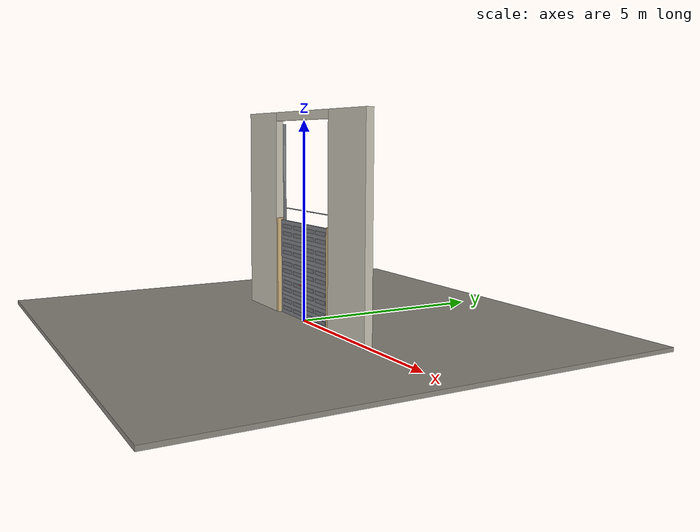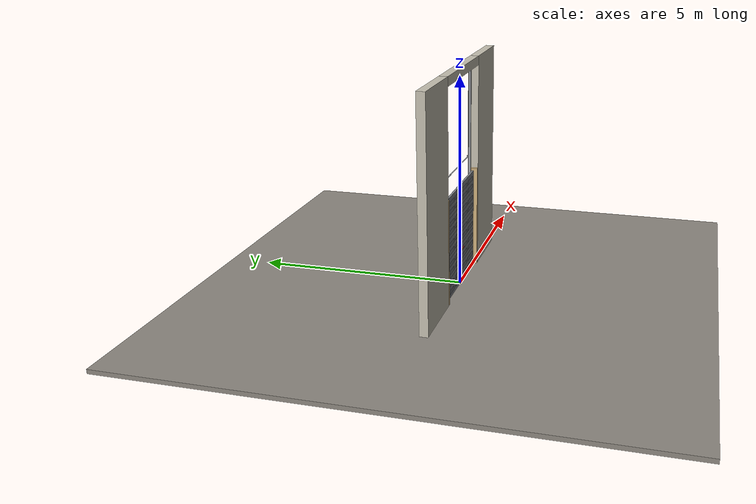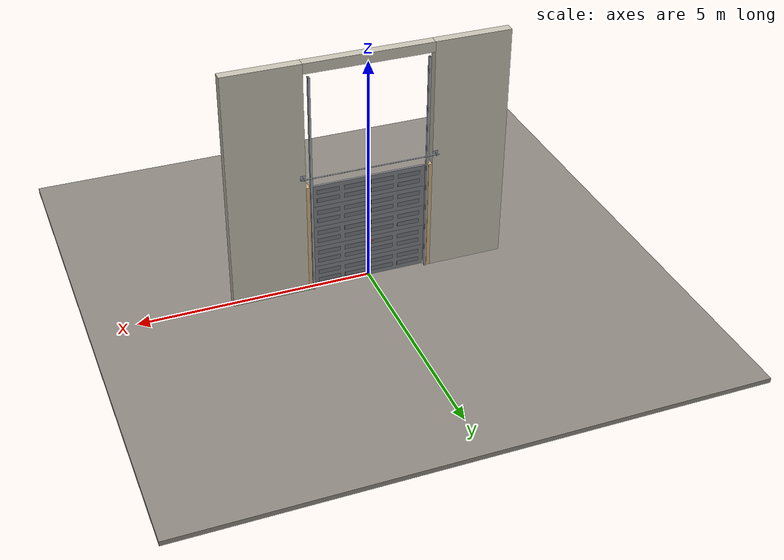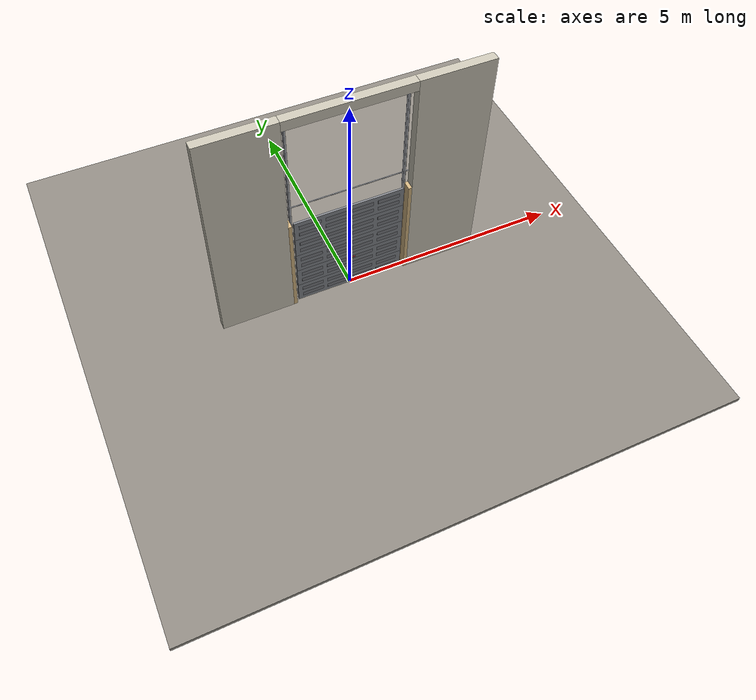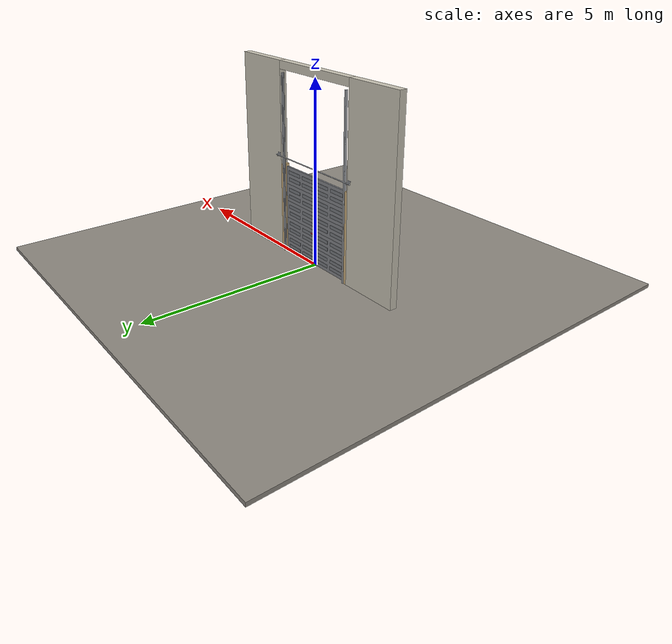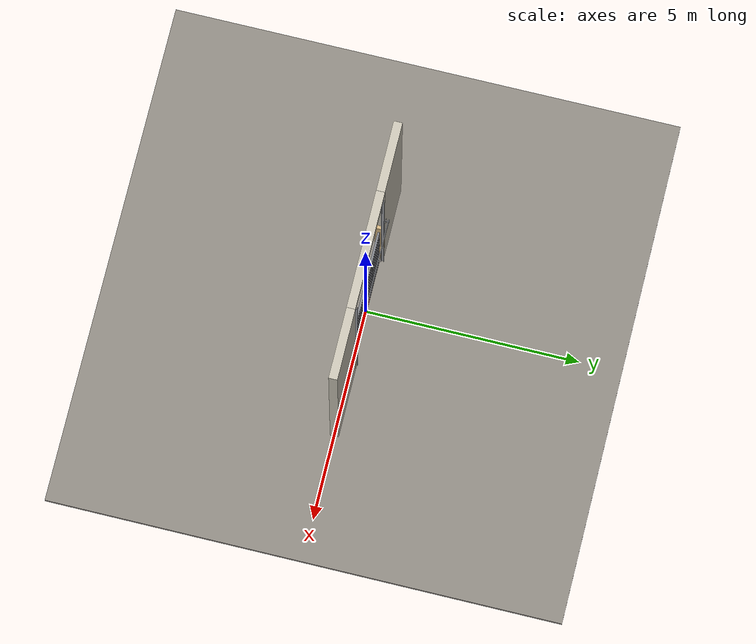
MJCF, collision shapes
<?xml version="1.0" ?>
<mujoco model="db0437_garage_sectional_simple">
  <compiler angle="radian" meshdir="../../hardware" texturedir="../../textures" autolimits="true" inertiafromgeom="false"/>
  <option timestep="0.002" integrator="implicitfast" cone="elliptic" impratio="10" noslip_iterations="3">
    <flag multiccd="enable"/>
  </option>
  <size memory="16M"/>
  <default>
    <geom condim="4" solref="0.005 1" solimp="0.95 0.99 0.001"/>
    <joint solreflimit="0.005 1" solimplimit="0.95 0.99 0.001"/>
    <tendon solreflimit="0.005 1"/>
    <equality solref="0.002 1"/>
  </default>
  <visual>
    <headlight ambient="0.4 0.4 0.4" diffuse="0.7 0.7 0.7" specular="0.2 0.2 0.2"/>
    <quality shadowsize="4096"/>
    <map znear="0.01" zfar="60"/>
  </visual>
  <asset>
    <mesh name="pull_bdc5e965ab" file="pull_bdc5e965ab.obj"/>
    <material name="mat_floor" rgba="0.55 0.53 0.5 1" specular="0.2" shininess="0.15" reflectance="0"/>
    <material name="mat_wall" rgba="0.78 0.76 0.7 1" specular="0.2" shininess="0.1" reflectance="0"/>
    <material name="mat_frame" rgba="0.82 0.7 0.5 1" specular="0.2" shininess="0.45" reflectance="0"/>
    <material name="mat_track" rgba="0.65 0.66 0.68 1" specular="0.74" shininess="0.5" reflectance="0.36"/>
    <material name="mat_section_0" rgba="0.5 0.51 0.53 1" specular="0.23" shininess="0.36" reflectance="0.02"/>
    <material name="mat_section_0_panel" rgba="0.46 0.469 0.488 1" specular="0.23" shininess="0.36" reflectance="0.02"/>
    <material name="mat_section_1" rgba="0.5 0.51 0.53 1" specular="0.23" shininess="0.36" reflectance="0.02"/>
    <material name="mat_section_1_panel" rgba="0.46 0.469 0.488 1" specular="0.23" shininess="0.36" reflectance="0.02"/>
    <material name="mat_hinge_line" rgba="0.2 0.2 0.2 1" specular="0.2" shininess="0.3" reflectance="0"/>
    <material name="mat_section_2" rgba="0.5 0.51 0.53 1" specular="0.23" shininess="0.36" reflectance="0.02"/>
    <material name="mat_section_2_panel" rgba="0.46 0.469 0.488 1" specular="0.23" shininess="0.36" reflectance="0.02"/>
    <material name="mat_section_3" rgba="0.5 0.51 0.53 1" specular="0.23" shininess="0.36" reflectance="0.02"/>
    <material name="mat_section_3_panel" rgba="0.46 0.469 0.488 1" specular="0.23" shininess="0.36" reflectance="0.02"/>
    <material name="mat_section_4" rgba="0.5 0.51 0.53 1" specular="0.23" shininess="0.36" reflectance="0.02"/>
    <material name="mat_section_4_panel" rgba="0.46 0.469 0.488 1" specular="0.23" shininess="0.36" reflectance="0.02"/>
    <material name="mat_spring" rgba="0.55 0.56 0.58 1" specular="0.8" shininess="0.55" reflectance="0.4"/>
    <material name="mat_op_black_matte_metal" rgba="0.05 0.05 0.05 1" specular="0.38" shininess="0.3" reflectance="0.12"/>
    <texture name="skybox" type="skybox" builtin="gradient" rgb1="0.6 0.7 0.85" rgb2="0.9 0.92 0.95" width="256" height="256"/>
  </asset>
  <worldbody>
    <light name="sun" pos="1.5 -2.5 4" dir="-0.3 0.5 -0.8" directional="true" diffuse="0.8 0.8 0.8" specular="0.3 0.3 0.3" castshadow="true"/>
    <light name="fill" pos="-1.5 2.5 3" dir="0.3 -0.5 -0.7" directional="true" diffuse="0.35 0.35 0.4" castshadow="false"/>
    <camera name="robot_view" pos="0 -2.959375 2.073625" xyaxes="1 0 0 0 0.26963 0.962964" fovy="52"/>
    <camera name="far_view" pos="0 2.959375 2.073625" xyaxes="-1 0 0 0 -0.26963 0.962964" fovy="52"/>
    <camera name="iso" pos="2.249125 -2.485875 2.547125" xyaxes="0.741536 0.670913 0 -0.242917 0.268487 0.932151" fovy="46"/>
    <camera name="detail_handle" pos="0.25 -1.175 1.25" xyaxes="0.975133 0.221621 0 -0.065674 0.288965 0.955084" fovy="38"/>
    <geom name="floor" type="box" size="6 6 0.05" pos="0 0 -0.05" material="mat_floor" group="0" contype="1" conaffinity="1" friction="0.8 0.005 0.0001" density="2400"/>
    <geom name="wall_left" type="box" size="0.8175 0.1 2.615" pos="-2.1825 0 2.615" material="mat_wall" group="0" contype="1" conaffinity="1" friction="0.6 0.005 0.0001" density="800"/>
    <geom name="wall_right" type="box" size="0.8175 0.1 2.615" pos="2.1825 0 2.615" material="mat_wall" group="0" contype="1" conaffinity="1" friction="0.6 0.005 0.0001" density="800"/>
    <geom name="wall_header" type="box" size="1.365 0.1 0.11" pos="0 0 5.12" material="mat_wall" group="0" contype="1" conaffinity="1" friction="0.6 0.005 0.0001" density="800"/>
    <geom name="garage_jamb_l" type="box" size="0.04 0.1 1.245" pos="-1.325 0 1.245" material="mat_frame" group="0" contype="1" conaffinity="1" friction="0.6 0.005 0.0001" density="400"/>
    <geom name="garage_jamb_r" type="box" size="0.04 0.1 1.245" pos="1.325 0 1.245" material="mat_frame" group="0" contype="1" conaffinity="1" friction="0.6 0.005 0.0001" density="400"/>
    <geom name="track_l" type="box" size="0.004 0.033 2.465" pos="-1.27 0.085 2.465" material="mat_track" group="0" contype="1" conaffinity="1" friction="0.6 0.005 0.0001" density="7850"/>
    <geom name="track_l_flange_n" type="box" size="0.022 0.004 2.465" pos="-1.252 0.056 2.465" material="mat_track" group="0" contype="1" conaffinity="1" friction="0.6 0.005 0.0001" density="7850"/>
    <geom name="track_l_flange_p" type="box" size="0.022 0.004 2.465" pos="-1.252 0.114 2.465" material="mat_track" group="0" contype="1" conaffinity="1" friction="0.6 0.005 0.0001" density="7850"/>
    <geom name="track_r" type="box" size="0.004 0.033 2.465" pos="1.27 0.085 2.465" material="mat_track" group="0" contype="1" conaffinity="1" friction="0.6 0.005 0.0001" density="7850"/>
    <geom name="track_r_flange_n" type="box" size="0.022 0.004 2.465" pos="1.252 0.056 2.465" material="mat_track" group="0" contype="1" conaffinity="1" friction="0.6 0.005 0.0001" density="7850"/>
    <geom name="track_r_flange_p" type="box" size="0.022 0.004 2.465" pos="1.252 0.114 2.465" material="mat_track" group="0" contype="1" conaffinity="1" friction="0.6 0.005 0.0001" density="7850"/>
    <geom name="torsion_shaft" type="cylinder" size="0.013 1.475" pos="0 0.17 2.74" quat="0.707107 0 0.707107 0" material="mat_track" group="0" contype="1" conaffinity="1" friction="0.6 0.005 0.0001" density="7850"/>
    <geom name="torsion_bearing_plate_l" type="box" size="0.055 0.004 0.055" pos="-1.425 0.104 2.74" material="mat_track" group="1" contype="0" conaffinity="0" density="7850"/>
    <geom name="torsion_bearing_arm_l" type="box" size="0.008 0.049 0.03" pos="-1.425 0.139 2.74" material="mat_track" group="1" contype="0" conaffinity="0" density="7850"/>
    <geom name="torsion_bearing_plate_r" type="box" size="0.055 0.004 0.055" pos="1.425 0.104 2.74" material="mat_track" group="1" contype="0" conaffinity="0" density="7850"/>
    <geom name="torsion_bearing_arm_r" type="box" size="0.008 0.049 0.03" pos="1.425 0.139 2.74" material="mat_track" group="1" contype="0" conaffinity="0" density="7850"/>
    <site name="approach_point" pos="0 -2 0" quat="1 0 0 0" size="0.05" rgba="0.2 0.9 0.2 0.5" group="4"/>
    <site name="goal_point" pos="0 2 0" quat="1 0 0 0" size="0.05" rgba="0.2 0.9 0.2 0.5" group="4"/>
    <site name="door_plane_center" pos="0 0 1.245" quat="1 0 0 0" size="0.02" rgba="0.2 0.9 0.2 0.5" group="4"/>
    <body name="door" pos="0 0 0">
      <inertial pos="0 0 1.225856" mass="79.742416" quat="-0.5 0.5 0.5 0.5" diaginertia="39.090763465 39.194623237 78.24336217"/>
      <joint name="door_slide" type="slide" axis="0 0 1" limited="true" range="0 2.39" damping="5.987121" frictionloss="234.601789" stiffness="93.283612" springref="7.966667" armature="0.5"/>
      <geom name="section_0_slab" type="box" size="1.22 0.025 0.244" pos="0 0 0.254" material="mat_section_0" group="0" contype="1" conaffinity="1" friction="0.4 0.005 0.0001" density="1"/>
      <geom name="section_0_panel_0_n" type="box" size="0.2425 0.003 0.047" pos="-0.8775 -0.028 0.157" material="mat_section_0_panel" group="1" contype="0" conaffinity="0" density="1"/>
      <geom name="section_0_panel_0_p" type="box" size="0.2425 0.003 0.047" pos="-0.8775 0.028 0.157" material="mat_section_0_panel" group="1" contype="0" conaffinity="0" density="1"/>
      <geom name="section_0_panel_1_n" type="box" size="0.2425 0.003 0.047" pos="-0.2925 -0.028 0.157" material="mat_section_0_panel" group="1" contype="0" conaffinity="0" density="1"/>
      <geom name="section_0_panel_1_p" type="box" size="0.2425 0.003 0.047" pos="-0.2925 0.028 0.157" material="mat_section_0_panel" group="1" contype="0" conaffinity="0" density="1"/>
      <geom name="section_0_panel_2_n" type="box" size="0.2425 0.003 0.047" pos="0.2925 -0.028 0.157" material="mat_section_0_panel" group="1" contype="0" conaffinity="0" density="1"/>
      <geom name="section_0_panel_2_p" type="box" size="0.2425 0.003 0.047" pos="0.2925 0.028 0.157" material="mat_section_0_panel" group="1" contype="0" conaffinity="0" density="1"/>
      <geom name="section_0_panel_3_n" type="box" size="0.2425 0.003 0.047" pos="0.8775 -0.028 0.157" material="mat_section_0_panel" group="1" contype="0" conaffinity="0" density="1"/>
      <geom name="section_0_panel_3_p" type="box" size="0.2425 0.003 0.047" pos="0.8775 0.028 0.157" material="mat_section_0_panel" group="1" contype="0" conaffinity="0" density="1"/>
      <geom name="section_0_panel_4_n" type="box" size="0.2425 0.003 0.047" pos="-0.8775 -0.028 0.351" material="mat_section_0_panel" group="1" contype="0" conaffinity="0" density="1"/>
      <geom name="section_0_panel_4_p" type="box" size="0.2425 0.003 0.047" pos="-0.8775 0.028 0.351" material="mat_section_0_panel" group="1" contype="0" conaffinity="0" density="1"/>
      <geom name="section_0_panel_5_n" type="box" size="0.2425 0.003 0.047" pos="-0.2925 -0.028 0.351" material="mat_section_0_panel" group="1" contype="0" conaffinity="0" density="1"/>
      <geom name="section_0_panel_5_p" type="box" size="0.2425 0.003 0.047" pos="-0.2925 0.028 0.351" material="mat_section_0_panel" group="1" contype="0" conaffinity="0" density="1"/>
      <geom name="section_0_panel_6_n" type="box" size="0.2425 0.003 0.047" pos="0.2925 -0.028 0.351" material="mat_section_0_panel" group="1" contype="0" conaffinity="0" density="1"/>
      <geom name="section_0_panel_6_p" type="box" size="0.2425 0.003 0.047" pos="0.2925 0.028 0.351" material="mat_section_0_panel" group="1" contype="0" conaffinity="0" density="1"/>
      <geom name="section_0_panel_7_n" type="box" size="0.2425 0.003 0.047" pos="0.8775 -0.028 0.351" material="mat_section_0_panel" group="1" contype="0" conaffinity="0" density="1"/>
      <geom name="section_0_panel_7_p" type="box" size="0.2425 0.003 0.047" pos="0.8775 0.028 0.351" material="mat_section_0_panel" group="1" contype="0" conaffinity="0" density="1"/>
      <geom name="section_1_slab" type="box" size="1.22 0.025 0.244" pos="0 0 0.742" material="mat_section_1" group="0" contype="1" conaffinity="1" friction="0.4 0.005 0.0001" density="1"/>
      <geom name="section_1_panel_0_n" type="box" size="0.2425 0.003 0.047" pos="-0.8775 -0.028 0.645" material="mat_section_1_panel" group="1" contype="0" conaffinity="0" density="1"/>
      <geom name="section_1_panel_0_p" type="box" size="0.2425 0.003 0.047" pos="-0.8775 0.028 0.645" material="mat_section_1_panel" group="1" contype="0" conaffinity="0" density="1"/>
      <geom name="section_1_panel_1_n" type="box" size="0.2425 0.003 0.047" pos="-0.2925 -0.028 0.645" material="mat_section_1_panel" group="1" contype="0" conaffinity="0" density="1"/>
      <geom name="section_1_panel_1_p" type="box" size="0.2425 0.003 0.047" pos="-0.2925 0.028 0.645" material="mat_section_1_panel" group="1" contype="0" conaffinity="0" density="1"/>
      <geom name="section_1_panel_2_n" type="box" size="0.2425 0.003 0.047" pos="0.2925 -0.028 0.645" material="mat_section_1_panel" group="1" contype="0" conaffinity="0" density="1"/>
      <geom name="section_1_panel_2_p" type="box" size="0.2425 0.003 0.047" pos="0.2925 0.028 0.645" material="mat_section_1_panel" group="1" contype="0" conaffinity="0" density="1"/>
      <geom name="section_1_panel_3_n" type="box" size="0.2425 0.003 0.047" pos="0.8775 -0.028 0.645" material="mat_section_1_panel" group="1" contype="0" conaffinity="0" density="1"/>
      <geom name="section_1_panel_3_p" type="box" size="0.2425 0.003 0.047" pos="0.8775 0.028 0.645" material="mat_section_1_panel" group="1" contype="0" conaffinity="0" density="1"/>
      <geom name="section_1_panel_4_n" type="box" size="0.2425 0.003 0.047" pos="-0.8775 -0.028 0.839" material="mat_section_1_panel" group="1" contype="0" conaffinity="0" density="1"/>
      <geom name="section_1_panel_4_p" type="box" size="0.2425 0.003 0.047" pos="-0.8775 0.028 0.839" material="mat_section_1_panel" group="1" contype="0" conaffinity="0" density="1"/>
      <geom name="section_1_panel_5_n" type="box" size="0.2425 0.003 0.047" pos="-0.2925 -0.028 0.839" material="mat_section_1_panel" group="1" contype="0" conaffinity="0" density="1"/>
      <geom name="section_1_panel_5_p" type="box" size="0.2425 0.003 0.047" pos="-0.2925 0.028 0.839" material="mat_section_1_panel" group="1" contype="0" conaffinity="0" density="1"/>
      <geom name="section_1_panel_6_n" type="box" size="0.2425 0.003 0.047" pos="0.2925 -0.028 0.839" material="mat_section_1_panel" group="1" contype="0" conaffinity="0" density="1"/>
      <geom name="section_1_panel_6_p" type="box" size="0.2425 0.003 0.047" pos="0.2925 0.028 0.839" material="mat_section_1_panel" group="1" contype="0" conaffinity="0" density="1"/>
      <geom name="section_1_panel_7_n" type="box" size="0.2425 0.003 0.047" pos="0.8775 -0.028 0.839" material="mat_section_1_panel" group="1" contype="0" conaffinity="0" density="1"/>
      <geom name="section_1_panel_7_p" type="box" size="0.2425 0.003 0.047" pos="0.8775 0.028 0.839" material="mat_section_1_panel" group="1" contype="0" conaffinity="0" density="1"/>
      <geom name="section_2_slab" type="box" size="1.22 0.025 0.244" pos="0 0 1.23" material="mat_section_2" group="0" contype="1" conaffinity="1" friction="0.4 0.005 0.0001" density="1"/>
      <geom name="section_2_panel_0_n" type="box" size="0.2425 0.003 0.047" pos="-0.8775 -0.028 1.133" material="mat_section_2_panel" group="1" contype="0" conaffinity="0" density="1"/>
      <geom name="section_2_panel_0_p" type="box" size="0.2425 0.003 0.047" pos="-0.8775 0.028 1.133" material="mat_section_2_panel" group="1" contype="0" conaffinity="0" density="1"/>
      <geom name="section_2_panel_1_n" type="box" size="0.2425 0.003 0.047" pos="-0.2925 -0.028 1.133" material="mat_section_2_panel" group="1" contype="0" conaffinity="0" density="1"/>
      <geom name="section_2_panel_1_p" type="box" size="0.2425 0.003 0.047" pos="-0.2925 0.028 1.133" material="mat_section_2_panel" group="1" contype="0" conaffinity="0" density="1"/>
      <geom name="section_2_panel_2_n" type="box" size="0.2425 0.003 0.047" pos="0.2925 -0.028 1.133" material="mat_section_2_panel" group="1" contype="0" conaffinity="0" density="1"/>
      <geom name="section_2_panel_2_p" type="box" size="0.2425 0.003 0.047" pos="0.2925 0.028 1.133" material="mat_section_2_panel" group="1" contype="0" conaffinity="0" density="1"/>
      <geom name="section_2_panel_3_n" type="box" size="0.2425 0.003 0.047" pos="0.8775 -0.028 1.133" material="mat_section_2_panel" group="1" contype="0" conaffinity="0" density="1"/>
      <geom name="section_2_panel_3_p" type="box" size="0.2425 0.003 0.047" pos="0.8775 0.028 1.133" material="mat_section_2_panel" group="1" contype="0" conaffinity="0" density="1"/>
      <geom name="section_2_panel_4_n" type="box" size="0.2425 0.003 0.047" pos="-0.8775 -0.028 1.327" material="mat_section_2_panel" group="1" contype="0" conaffinity="0" density="1"/>
      <geom name="section_2_panel_4_p" type="box" size="0.2425 0.003 0.047" pos="-0.8775 0.028 1.327" material="mat_section_2_panel" group="1" contype="0" conaffinity="0" density="1"/>
      <geom name="section_2_panel_5_n" type="box" size="0.2425 0.003 0.047" pos="-0.2925 -0.028 1.327" material="mat_section_2_panel" group="1" contype="0" conaffinity="0" density="1"/>
      <geom name="section_2_panel_5_p" type="box" size="0.2425 0.003 0.047" pos="-0.2925 0.028 1.327" material="mat_section_2_panel" group="1" contype="0" conaffinity="0" density="1"/>
      <geom name="section_2_panel_6_n" type="box" size="0.2425 0.003 0.047" pos="0.2925 -0.028 1.327" material="mat_section_2_panel" group="1" contype="0" conaffinity="0" density="1"/>
      <geom name="section_2_panel_6_p" type="box" size="0.2425 0.003 0.047" pos="0.2925 0.028 1.327" material="mat_section_2_panel" group="1" contype="0" conaffinity="0" density="1"/>
      <geom name="section_2_panel_7_n" type="box" size="0.2425 0.003 0.047" pos="0.8775 -0.028 1.327" material="mat_section_2_panel" group="1" contype="0" conaffinity="0" density="1"/>
      <geom name="section_2_panel_7_p" type="box" size="0.2425 0.003 0.047" pos="0.8775 0.028 1.327" material="mat_section_2_panel" group="1" contype="0" conaffinity="0" density="1"/>
      <geom name="section_3_slab" type="box" size="1.22 0.025 0.244" pos="0 0 1.718" material="mat_section_3" group="0" contype="1" conaffinity="1" friction="0.4 0.005 0.0001" density="1"/>
      <geom name="section_3_panel_0_n" type="box" size="0.2425 0.003 0.047" pos="-0.8775 -0.028 1.621" material="mat_section_3_panel" group="1" contype="0" conaffinity="0" density="1"/>
      <geom name="section_3_panel_0_p" type="box" size="0.2425 0.003 0.047" pos="-0.8775 0.028 1.621" material="mat_section_3_panel" group="1" contype="0" conaffinity="0" density="1"/>
      <geom name="section_3_panel_1_n" type="box" size="0.2425 0.003 0.047" pos="-0.2925 -0.028 1.621" material="mat_section_3_panel" group="1" contype="0" conaffinity="0" density="1"/>
      <geom name="section_3_panel_1_p" type="box" size="0.2425 0.003 0.047" pos="-0.2925 0.028 1.621" material="mat_section_3_panel" group="1" contype="0" conaffinity="0" density="1"/>
      <geom name="section_3_panel_2_n" type="box" size="0.2425 0.003 0.047" pos="0.2925 -0.028 1.621" material="mat_section_3_panel" group="1" contype="0" conaffinity="0" density="1"/>
      <geom name="section_3_panel_2_p" type="box" size="0.2425 0.003 0.047" pos="0.2925 0.028 1.621" material="mat_section_3_panel" group="1" contype="0" conaffinity="0" density="1"/>
      <geom name="section_3_panel_3_n" type="box" size="0.2425 0.003 0.047" pos="0.8775 -0.028 1.621" material="mat_section_3_panel" group="1" contype="0" conaffinity="0" density="1"/>
      <geom name="section_3_panel_3_p" type="box" size="0.2425 0.003 0.047" pos="0.8775 0.028 1.621" material="mat_section_3_panel" group="1" contype="0" conaffinity="0" density="1"/>
      <geom name="section_3_panel_4_n" type="box" size="0.2425 0.003 0.047" pos="-0.8775 -0.028 1.815" material="mat_section_3_panel" group="1" contype="0" conaffinity="0" density="1"/>
      <geom name="section_3_panel_4_p" type="box" size="0.2425 0.003 0.047" pos="-0.8775 0.028 1.815" material="mat_section_3_panel" group="1" contype="0" conaffinity="0" density="1"/>
      <geom name="section_3_panel_5_n" type="box" size="0.2425 0.003 0.047" pos="-0.2925 -0.028 1.815" material="mat_section_3_panel" group="1" contype="0" conaffinity="0" density="1"/>
      <geom name="section_3_panel_5_p" type="box" size="0.2425 0.003 0.047" pos="-0.2925 0.028 1.815" material="mat_section_3_panel" group="1" contype="0" conaffinity="0" density="1"/>
      <geom name="section_3_panel_6_n" type="box" size="0.2425 0.003 0.047" pos="0.2925 -0.028 1.815" material="mat_section_3_panel" group="1" contype="0" conaffinity="0" density="1"/>
      <geom name="section_3_panel_6_p" type="box" size="0.2425 0.003 0.047" pos="0.2925 0.028 1.815" material="mat_section_3_panel" group="1" contype="0" conaffinity="0" density="1"/>
      <geom name="section_3_panel_7_n" type="box" size="0.2425 0.003 0.047" pos="0.8775 -0.028 1.815" material="mat_section_3_panel" group="1" contype="0" conaffinity="0" density="1"/>
      <geom name="section_3_panel_7_p" type="box" size="0.2425 0.003 0.047" pos="0.8775 0.028 1.815" material="mat_section_3_panel" group="1" contype="0" conaffinity="0" density="1"/>
      <geom name="section_4_slab" type="box" size="1.22 0.025 0.244" pos="0 0 2.206" material="mat_section_4" group="0" contype="1" conaffinity="1" friction="0.4 0.005 0.0001" density="1"/>
      <geom name="section_4_panel_0_n" type="box" size="0.2425 0.003 0.047" pos="-0.8775 -0.028 2.109" material="mat_section_4_panel" group="1" contype="0" conaffinity="0" density="1"/>
      <geom name="section_4_panel_0_p" type="box" size="0.2425 0.003 0.047" pos="-0.8775 0.028 2.109" material="mat_section_4_panel" group="1" contype="0" conaffinity="0" density="1"/>
      <geom name="section_4_panel_1_n" type="box" size="0.2425 0.003 0.047" pos="-0.2925 -0.028 2.109" material="mat_section_4_panel" group="1" contype="0" conaffinity="0" density="1"/>
      <geom name="section_4_panel_1_p" type="box" size="0.2425 0.003 0.047" pos="-0.2925 0.028 2.109" material="mat_section_4_panel" group="1" contype="0" conaffinity="0" density="1"/>
      <geom name="section_4_panel_2_n" type="box" size="0.2425 0.003 0.047" pos="0.2925 -0.028 2.109" material="mat_section_4_panel" group="1" contype="0" conaffinity="0" density="1"/>
      <geom name="section_4_panel_2_p" type="box" size="0.2425 0.003 0.047" pos="0.2925 0.028 2.109" material="mat_section_4_panel" group="1" contype="0" conaffinity="0" density="1"/>
      <geom name="section_4_panel_3_n" type="box" size="0.2425 0.003 0.047" pos="0.8775 -0.028 2.109" material="mat_section_4_panel" group="1" contype="0" conaffinity="0" density="1"/>
      <geom name="section_4_panel_3_p" type="box" size="0.2425 0.003 0.047" pos="0.8775 0.028 2.109" material="mat_section_4_panel" group="1" contype="0" conaffinity="0" density="1"/>
      <geom name="section_4_panel_4_n" type="box" size="0.2425 0.003 0.047" pos="-0.8775 -0.028 2.303" material="mat_section_4_panel" group="1" contype="0" conaffinity="0" density="1"/>
      <geom name="section_4_panel_4_p" type="box" size="0.2425 0.003 0.047" pos="-0.8775 0.028 2.303" material="mat_section_4_panel" group="1" contype="0" conaffinity="0" density="1"/>
      <geom name="section_4_panel_5_n" type="box" size="0.2425 0.003 0.047" pos="-0.2925 -0.028 2.303" material="mat_section_4_panel" group="1" contype="0" conaffinity="0" density="1"/>
      <geom name="section_4_panel_5_p" type="box" size="0.2425 0.003 0.047" pos="-0.2925 0.028 2.303" material="mat_section_4_panel" group="1" contype="0" conaffinity="0" density="1"/>
      <geom name="section_4_panel_6_n" type="box" size="0.2425 0.003 0.047" pos="0.2925 -0.028 2.303" material="mat_section_4_panel" group="1" contype="0" conaffinity="0" density="1"/>
      <geom name="section_4_panel_6_p" type="box" size="0.2425 0.003 0.047" pos="0.2925 0.028 2.303" material="mat_section_4_panel" group="1" contype="0" conaffinity="0" density="1"/>
      <geom name="section_4_panel_7_n" type="box" size="0.2425 0.003 0.047" pos="0.8775 -0.028 2.303" material="mat_section_4_panel" group="1" contype="0" conaffinity="0" density="1"/>
      <geom name="section_4_panel_7_p" type="box" size="0.2425 0.003 0.047" pos="0.8775 0.028 2.303" material="mat_section_4_panel" group="1" contype="0" conaffinity="0" density="1"/>
      <geom name="lift_handle_n" type="mesh" mesh="pull_bdc5e965ab" pos="0 -0.025 0.9" quat="0.707107 0.707107 0 0" material="mat_op_black_matte_metal" group="1" contype="0" conaffinity="0" density="3000"/>
      <geom name="lift_handle_col_n" type="box" size="0.1 0.006 0.015" pos="0 -0.075 0.9" material="mat_op_black_matte_metal" group="3" contype="1" conaffinity="1" rgba="0.8 0.3 0.3 0.25" friction="0.6 0.005 0.0001" density="3000"/>
      <geom name="lift_handle_p" type="mesh" mesh="pull_bdc5e965ab" pos="0 0.025 0.9" quat="-0.707107 0.707107 0 0" material="mat_op_black_matte_metal" group="1" contype="0" conaffinity="0" density="3000"/>
      <geom name="lift_handle_col_p" type="box" size="0.1 0.006 0.015" pos="0 0.075 0.9" material="mat_op_black_matte_metal" group="3" contype="1" conaffinity="1" rgba="0.8 0.3 0.3 0.25" friction="0.6 0.005 0.0001" density="3000"/>
      <site name="lift_handle_grip_n" pos="0 -0.075 0.9" quat="1 0 0 0" size="0.012" rgba="0.2 0.9 0.2 0.5" group="4"/>
      <site name="lift_handle_grip_p" pos="0 0.075 0.9" quat="1 0 0 0" size="0.012" rgba="0.2 0.9 0.2 0.5" group="4"/>
    </body>
  </worldbody>
  <sensor>
    <jointpos name="door_slide_pos" joint="door_slide"/>
    <jointvel name="door_slide_vel" joint="door_slide"/>
  </sensor>
</mujoco>
